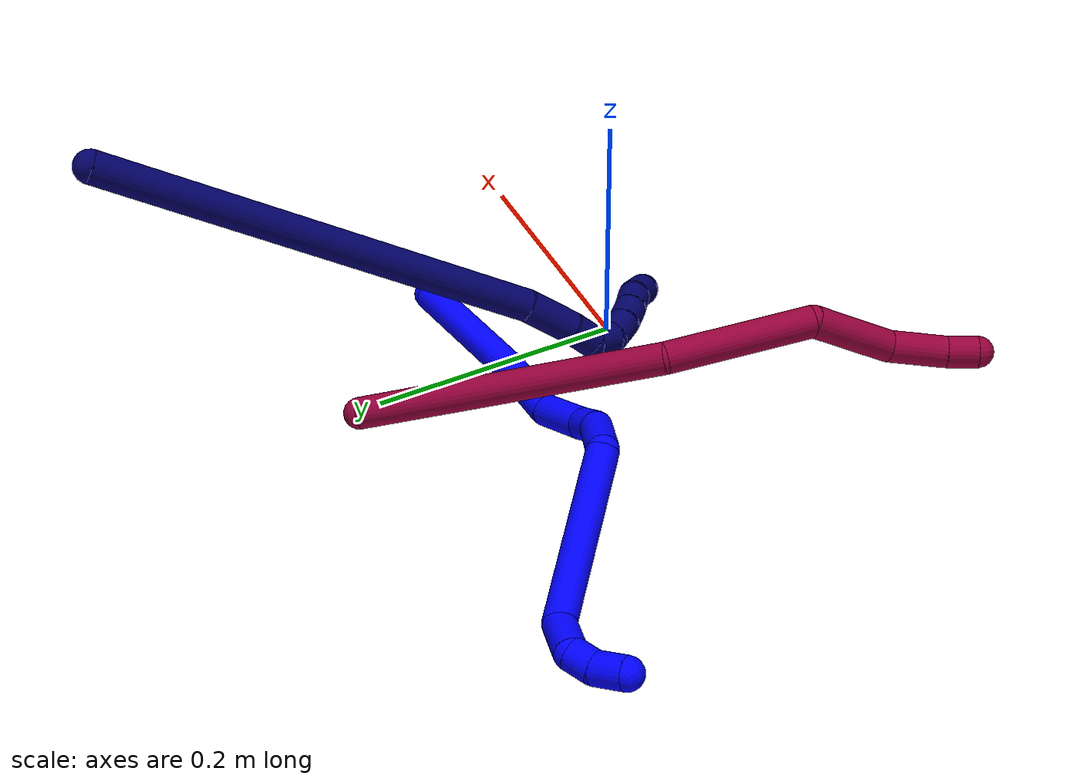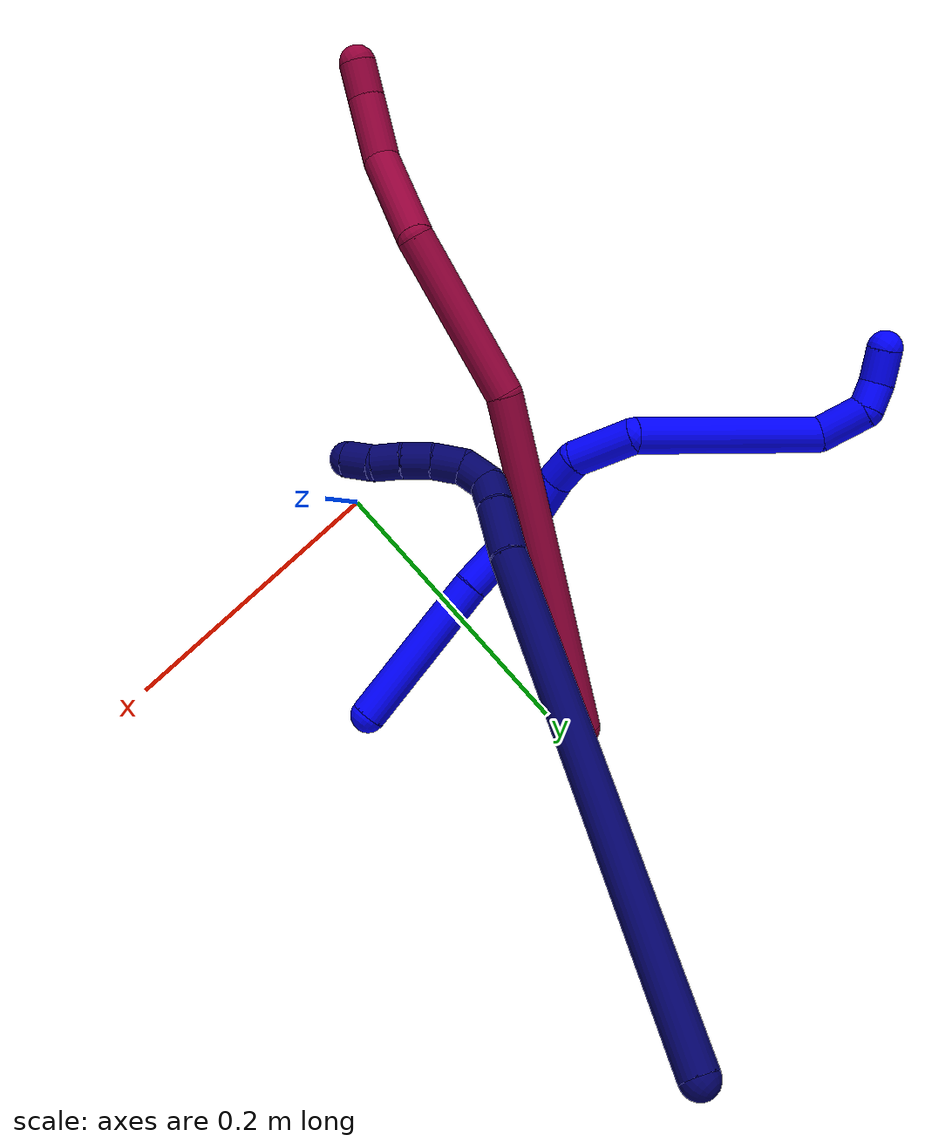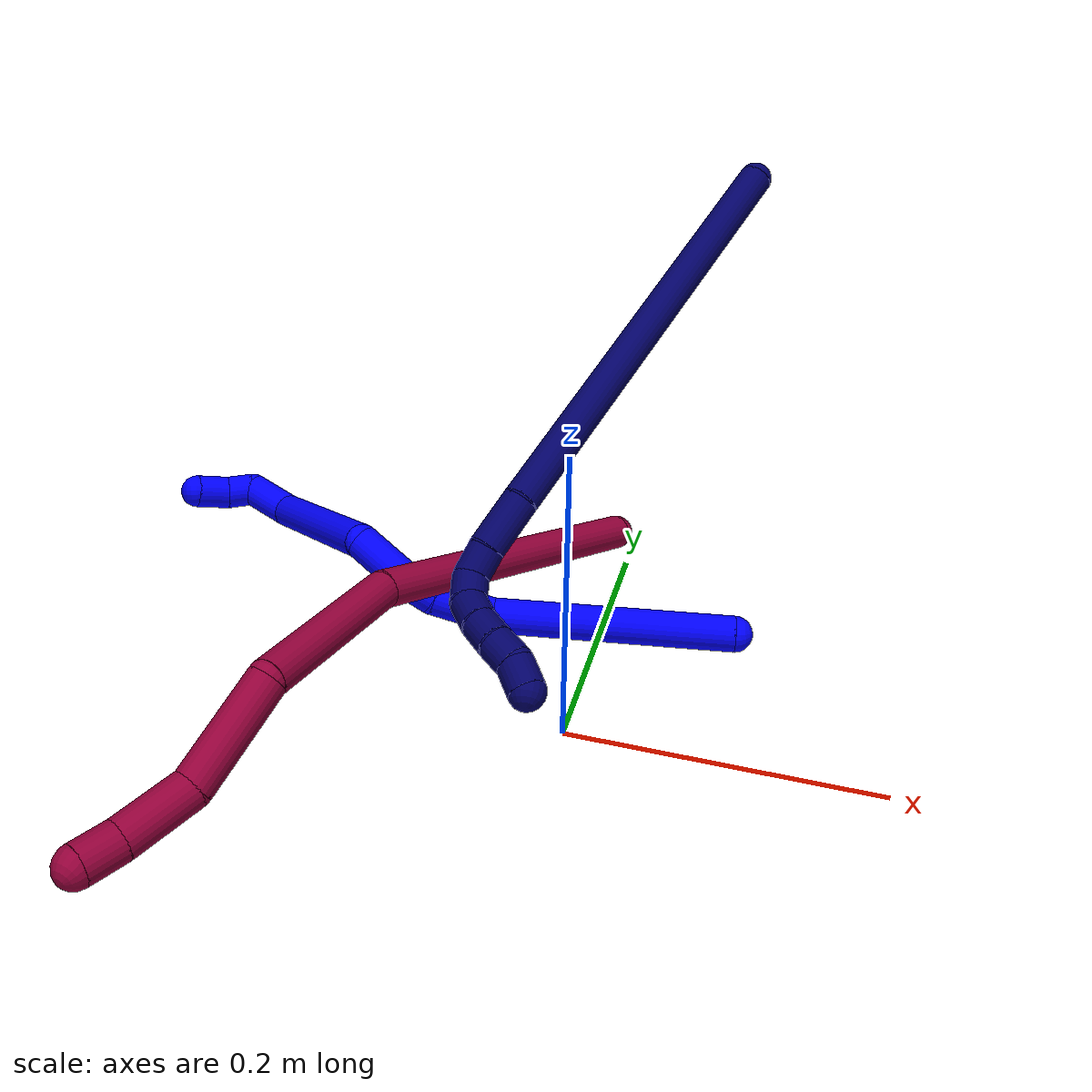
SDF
<sdf version="1.7">
 <world name="default">
  <model name="photoneo_s_sensor">
   <static>1</static>
   <pose>0 0 2 1.57079 1.57079 3.14159</pose>
   <link name="link">
    <inertial><mass>0.1</mass></inertial>
    <sensor name="sensor" type="depth">
     <update_rate>30</update_rate>
     <camera>
      <horizontal_fov>1.22</horizontal_fov>
      <image><width>1920</width><height>1200</height><format>B8G8R8</format></image>
      <clip><near>0.1</near><far>4</far></clip>
      <depth_camera><output>points</output></depth_camera>
     </camera>
     <plugin name="camera_plugin" filename="libgazebo_ros_depth_camera.so">
      <baseline>0.2</baseline>
      <alwaysOn>1</alwaysOn>
      <updateRate>0.0</updateRate>
      <cameraName>camera_ir</cameraName>
      <imageTopicName>/camera/color/image_raw</imageTopicName>
      <cameraInfoTopicName>/camera/color/camera_info</cameraInfoTopicName>
      <depthImageTopicName>/camera/depth/image_raw</depthImageTopicName>
      <depthImageCameraInfoTopicName>/camera/depth/camera_info</depthImageCameraInfoTopicName>
      <pointCloudTopicName>/camera/depth/points</pointCloudTopicName>
      <frameName>fr_optical</frameName>
      <pointCloudCutoff>0.1</pointCloudCutoff>
      <pointCloudCutoffMax>2.0</pointCloudCutoffMax>
      <distortionK1>0</distortionK1>
      <distortionK2>0</distortionK2>
      <distortionK3>0</distortionK3>
      <distortionT1>0</distortionT1>
      <distortionT2>0</distortionT2>
      <CxPrime>0</CxPrime>
      <Cx>0</Cx>
      <Cy>0</Cy>
      <focalLength>0</focalLength>
      <hackBaseline>0</hackBaseline>
     </plugin>
    </sensor>
   </link>
  </model>
  <model name="bin">
   <static>1</static>
   <link name="bottom">
    <collision name="collision-bottom">
     <pose>0 0 -0.01 0 -0 0</pose>
     <geometry><box><size>0.8 0.6 0.02</size></box></geometry>
     <surface>
      <friction><ode><mu>100</mu><mu2>100</mu2></ode></friction>
      <contact><collide_bitmask>65535</collide_bitmask></contact>
     </surface>
    </collision>
   </link>
   <link name="west_wall">
    <collision name="collision-west_wall">
     <pose>-0.41 0 0.1 0 -0 0</pose>
     <geometry><box><size>0.02 0.6 0.2</size></box></geometry>
     <surface>
      <friction><ode><mu>100</mu><mu2>100</mu2></ode></friction>
      <contact><collide_bitmask>65535</collide_bitmask></contact>
     </surface>
    </collision>
   </link>
   <link name="east_wall">
    <collision name="collision-east_wall">
     <pose>0.41 0 0.1 0 -0 0</pose>
     <geometry><box><size>0.02 0.6 0.2</size></box></geometry>
     <surface>
      <friction><ode><mu>100</mu><mu2>100</mu2></ode></friction>
      <contact><collide_bitmask>65535</collide_bitmask></contact>
     </surface>
    </collision>
   </link>
   <link name="south_wall">
    <collision name="collision-south_wall">
     <pose>0 -0.31 0.1 0 -0 0</pose>
     <geometry><box><size>0.8 0.02 0.2</size></box></geometry>
     <surface>
      <friction><ode><mu>100</mu><mu2>100</mu2></ode></friction>
      <contact><collide_bitmask>65535</collide_bitmask></contact>
     </surface>
    </collision>
   </link>
   <link name="north_wall">
    <collision name="collision-north_wall">
     <pose>0 0.31 0.1 0 -0 0</pose>
     <geometry><box><size>0.8 0.02 0.2</size></box></geometry>
     <surface>
      <friction><ode><mu>100</mu><mu2>100</mu2></ode></friction>
      <contact><collide_bitmask>65535</collide_bitmask></contact>
     </surface>
    </collision>
   </link>
  </model>
  <model name="1">
   <static>0</static>
   <link name="1">
    <collision name="collision-cylinder-e_1_1_4">
     <pose>0.001101 0.006374 0.057311 -0.110755 0.01909 -0.001058</pose>
     <geometry><cylinder><radius>0.0125</radius><length>0.115349</length></cylinder></geometry>
     <surface>
      <friction><ode><mu>1.16</mu><mu2>1.16</mu2><slip1>0</slip1><slip2>0</slip2></ode></friction>
      <contact><ode><kp>1e+06</kp><kd>1</kd><max_vel>0</max_vel><min_depth>0.001</min_depth></ode></contact>
     </surface>
    </collision>
    <visual name="visual-cylinder-e_1_1_4">
     <pose>0.001101 0.006374 0.057311 -0.110755 0.01909 -0.001058</pose>
     <geometry><cylinder><radius>0.0125</radius><length>0.115349</length></cylinder></geometry>
     <material><ambient>0 0 1 1</ambient></material>
    </visual>
    <collision name="collision-cylinder-e_2_4_5">
     <pose>0.00024 0.014702 0.141116 -0.073665 -0.073704 0.002717</pose>
     <geometry><cylinder><radius>0.0125</radius><length>0.053278</length></cylinder></geometry>
     <surface>
      <friction><ode><mu>1.16</mu><mu2>1.16</mu2><slip1>0</slip1><slip2>0</slip2></ode></friction>
      <contact><ode><kp>1e+06</kp><kd>1</kd><max_vel>0</max_vel><min_depth>0.001</min_depth></ode></contact>
     </surface>
    </collision>
    <visual name="visual-cylinder-e_2_4_5">
     <pose>0.00024 0.014702 0.141116 -0.073665 -0.073704 0.002717</pose>
     <geometry><cylinder><radius>0.0125</radius><length>0.053278</length></cylinder></geometry>
     <material><ambient>0 0 1 1</ambient></material>
    </visual>
    <collision name="collision-cylinder-e_3_5_6">
     <pose>0.002328 0.025517 0.18754 -0.418316 0.183559 -0.039068</pose>
     <geometry><cylinder><radius>0.0125</radius><length>0.044364</length></cylinder></geometry>
     <surface>
      <friction><ode><mu>1.16</mu><mu2>1.16</mu2><slip1>0</slip1><slip2>0</slip2></ode></friction>
      <contact><ode><kp>1e+06</kp><kd>1</kd><max_vel>0</max_vel><min_depth>0.001</min_depth></ode></contact>
     </surface>
    </collision>
    <visual name="visual-cylinder-e_3_5_6">
     <pose>0.002328 0.025517 0.18754 -0.418316 0.183559 -0.039068</pose>
     <geometry><cylinder><radius>0.0125</radius><length>0.044364</length></cylinder></geometry>
     <material><ambient>0 0 1 1</ambient></material>
    </visual>
    <collision name="collision-cylinder-e_4_6_7">
     <pose>0.007393 0.040935 0.216018 -0.654398 0.094072 -0.031949</pose>
     <geometry><cylinder><radius>0.0125</radius><length>0.021646</length></cylinder></geometry>
     <surface>
      <friction><ode><mu>1.16</mu><mu2>1.16</mu2><slip1>0</slip1><slip2>0</slip2></ode></friction>
      <contact><ode><kp>1e+06</kp><kd>1</kd><max_vel>0</max_vel><min_depth>0.001</min_depth></ode></contact>
     </surface>
    </collision>
    <visual name="visual-cylinder-e_4_6_7">
     <pose>0.007393 0.040935 0.216018 -0.654398 0.094072 -0.031949</pose>
     <geometry><cylinder><radius>0.0125</radius><length>0.021646</length></cylinder></geometry>
     <material><ambient>0 0 1 1</ambient></material>
    </visual>
    <collision name="collision-cylinder-e_5_7_8">
     <pose>0.000298 0.059845 0.241594 -0.627565 -0.368036 0.120649</pose>
     <geometry><cylinder><radius>0.0125</radius><length>0.04509</length></cylinder></geometry>
     <surface>
      <friction><ode><mu>1.16</mu><mu2>1.16</mu2><slip1>0</slip1><slip2>0</slip2></ode></friction>
      <contact><ode><kp>1e+06</kp><kd>1</kd><max_vel>0</max_vel><min_depth>0.001</min_depth></ode></contact>
     </surface>
    </collision>
    <visual name="visual-cylinder-e_5_7_8">
     <pose>0.000298 0.059845 0.241594 -0.627565 -0.368036 0.120649</pose>
     <geometry><cylinder><radius>0.0125</radius><length>0.04509</length></cylinder></geometry>
     <material><ambient>0 0 1 1</ambient></material>
    </visual>
    <collision name="collision-cylinder-e_6_8_9">
     <pose>-0.061765 0.068224 0.302342 0.090633 -0.887763 -0.043122</pose>
     <geometry><cylinder><radius>0.0125</radius><length>0.139113</length></cylinder></geometry>
     <surface>
      <friction><ode><mu>1.16</mu><mu2>1.16</mu2><slip1>0</slip1><slip2>0</slip2></ode></friction>
      <contact><ode><kp>1e+06</kp><kd>1</kd><max_vel>0</max_vel><min_depth>0.001</min_depth></ode></contact>
     </surface>
    </collision>
    <visual name="visual-cylinder-e_6_8_9">
     <pose>-0.061765 0.068224 0.302342 0.090633 -0.887763 -0.043122</pose>
     <geometry><cylinder><radius>0.0125</radius><length>0.139113</length></cylinder></geometry>
     <material><ambient>0 0 1 1</ambient></material>
    </visual>
    <collision name="collision-cylinder-e_7_9_10">
     <pose>-0.121027 0.072101 0.36146 -0.471505 -0.298071 0.072106</pose>
     <geometry><cylinder><radius>0.0125</radius><length>0.036162</length></cylinder></geometry>
     <surface>
      <friction><ode><mu>1.16</mu><mu2>1.16</mu2><slip1>0</slip1><slip2>0</slip2></ode></friction>
      <contact><ode><kp>1e+06</kp><kd>1</kd><max_vel>0</max_vel><min_depth>0.001</min_depth></ode></contact>
     </surface>
    </collision>
    <visual name="visual-cylinder-e_7_9_10">
     <pose>-0.121027 0.072101 0.36146 -0.471505 -0.298071 0.072106</pose>
     <geometry><cylinder><radius>0.0125</radius><length>0.036162</length></cylinder></geometry>
     <material><ambient>0 0 1 1</ambient></material>
    </visual>
    <collision name="collision-cylinder-e_8_10_11">
     <pose>-0.123597 0.079716 0.386501 0.02448 0.276822 0.00341</pose>
     <geometry><cylinder><radius>0.0125</radius><length>0.020055</length></cylinder></geometry>
     <surface>
      <friction><ode><mu>1.16</mu><mu2>1.16</mu2><slip1>0</slip1><slip2>0</slip2></ode></friction>
      <contact><ode><kp>1e+06</kp><kd>1</kd><max_vel>0</max_vel><min_depth>0.001</min_depth></ode></contact>
     </surface>
    </collision>
    <visual name="visual-cylinder-e_8_10_11">
     <pose>-0.123597 0.079716 0.386501 0.02448 0.276822 0.00341</pose>
     <geometry><cylinder><radius>0.0125</radius><length>0.020055</length></cylinder></geometry>
     <material><ambient>0 0 1 1</ambient></material>
    </visual>
    <collision name="collision-cylinder-e_9_11_2">
     <pose>-0.11435 0.082339 0.406391 -0.272153 0.548881 -0.077061</pose>
     <geometry><cylinder><radius>0.0125</radius><length>0.024942</length></cylinder></geometry>
     <surface>
      <friction><ode><mu>1.16</mu><mu2>1.16</mu2><slip1>0</slip1><slip2>0</slip2></ode></friction>
      <contact><ode><kp>1e+06</kp><kd>1</kd><max_vel>0</max_vel><min_depth>0.001</min_depth></ode></contact>
     </surface>
    </collision>
    <visual name="visual-cylinder-e_9_11_2">
     <pose>-0.11435 0.082339 0.406391 -0.272153 0.548881 -0.077061</pose>
     <geometry><cylinder><radius>0.0125</radius><length>0.024942</length></cylinder></geometry>
     <material><ambient>0 0 1 1</ambient></material>
    </visual>
    <collision name="collision-sphere-2">
     <pose>-0.107843 0.085199 0.416639 0 -0 0</pose>
     <geometry><sphere><radius>0.0125</radius></sphere></geometry>
     <surface>
      <friction><ode><mu>1.16</mu><mu2>1.16</mu2><slip1>0</slip1><slip2>0</slip2></ode></friction>
      <contact><ode><kp>1e+06</kp><kd>1</kd><max_vel>0</max_vel><min_depth>0.001</min_depth></ode></contact>
     </surface>
    </collision>
    <visual name="visual-sphere-2">
     <pose>-0.107843 0.085199 0.416639 0 -0 0</pose>
     <geometry><sphere><radius>0.0125</radius></sphere></geometry>
     <material><ambient>0 0 1 1</ambient></material>
    </visual>
    <collision name="collision-sphere-11">
     <pose>-0.120856 0.079479 0.396143 0 -0 0</pose>
     <geometry><sphere><radius>0.0125</radius></sphere></geometry>
     <surface>
      <friction><ode><mu>1.16</mu><mu2>1.16</mu2><slip1>0</slip1><slip2>0</slip2></ode></friction>
      <contact><ode><kp>1e+06</kp><kd>1</kd><max_vel>0</max_vel><min_depth>0.001</min_depth></ode></contact>
     </surface>
    </collision>
    <visual name="visual-sphere-11">
     <pose>-0.120856 0.079479 0.396143 0 -0 0</pose>
     <geometry><sphere><radius>0.0125</radius></sphere></geometry>
     <material><ambient>0 0 1 1</ambient></material>
    </visual>
    <collision name="collision-sphere-10">
     <pose>-0.126337 0.079952 0.376858 0 -0 0</pose>
     <geometry><sphere><radius>0.0125</radius></sphere></geometry>
     <surface>
      <friction><ode><mu>1.16</mu><mu2>1.16</mu2><slip1>0</slip1><slip2>0</slip2></ode></friction>
      <contact><ode><kp>1e+06</kp><kd>1</kd><max_vel>0</max_vel><min_depth>0.001</min_depth></ode></contact>
     </surface>
    </collision>
    <visual name="visual-sphere-10">
     <pose>-0.126337 0.079952 0.376858 0 -0 0</pose>
     <geometry><sphere><radius>0.0125</radius></sphere></geometry>
     <material><ambient>0 0 1 1</ambient></material>
    </visual>
    <collision name="collision-sphere-9">
     <pose>-0.115717 0.06425 0.346062 0 -0 0</pose>
     <geometry><sphere><radius>0.0125</radius></sphere></geometry>
     <surface>
      <friction><ode><mu>1.16</mu><mu2>1.16</mu2><slip1>0</slip1><slip2>0</slip2></ode></friction>
      <contact><ode><kp>1e+06</kp><kd>1</kd><max_vel>0</max_vel><min_depth>0.001</min_depth></ode></contact>
     </surface>
    </collision>
    <visual name="visual-sphere-9">
     <pose>-0.115717 0.06425 0.346062 0 -0 0</pose>
     <geometry><sphere><radius>0.0125</radius></sphere></geometry>
     <material><ambient>0 0 1 1</ambient></material>
    </visual>
    <collision name="collision-sphere-4">
     <pose>0.002202 0.012747 0.114621 0 -0 0</pose>
     <geometry><sphere><radius>0.0125</radius></sphere></geometry>
     <surface>
      <friction><ode><mu>1.16</mu><mu2>1.16</mu2><slip1>0</slip1><slip2>0</slip2></ode></friction>
      <contact><ode><kp>1e+06</kp><kd>1</kd><max_vel>0</max_vel><min_depth>0.001</min_depth></ode></contact>
     </surface>
    </collision>
    <visual name="visual-sphere-4">
     <pose>0.002202 0.012747 0.114621 0 -0 0</pose>
     <geometry><sphere><radius>0.0125</radius></sphere></geometry>
     <material><ambient>0 0 1 1</ambient></material>
    </visual>
    <collision name="collision-sphere-1">
     <geometry><sphere><radius>0.0125</radius></sphere></geometry>
     <surface>
      <friction><ode><mu>1.16</mu><mu2>1.16</mu2><slip1>0</slip1><slip2>0</slip2></ode></friction>
      <contact><ode><kp>1e+06</kp><kd>1</kd><max_vel>0</max_vel><min_depth>0.001</min_depth></ode></contact>
     </surface>
    </collision>
    <visual name="visual-sphere-1">
     <geometry><sphere><radius>0.0125</radius></sphere></geometry>
     <material><ambient>0 0 1 1</ambient></material>
    </visual>
    <collision name="collision-sphere-8">
     <pose>-0.007813 0.072197 0.258622 0 -0 0</pose>
     <geometry><sphere><radius>0.0125</radius></sphere></geometry>
     <surface>
      <friction><ode><mu>1.16</mu><mu2>1.16</mu2><slip1>0</slip1><slip2>0</slip2></ode></friction>
      <contact><ode><kp>1e+06</kp><kd>1</kd><max_vel>0</max_vel><min_depth>0.001</min_depth></ode></contact>
     </surface>
    </collision>
    <visual name="visual-sphere-8">
     <pose>-0.007813 0.072197 0.258622 0 -0 0</pose>
     <geometry><sphere><radius>0.0125</radius></sphere></geometry>
     <material><ambient>0 0 1 1</ambient></material>
    </visual>
    <collision name="collision-sphere-5">
     <pose>-0.001721 0.016658 0.167611 0 -0 0</pose>
     <geometry><sphere><radius>0.0125</radius></sphere></geometry>
     <surface>
      <friction><ode><mu>1.16</mu><mu2>1.16</mu2><slip1>0</slip1><slip2>0</slip2></ode></friction>
      <contact><ode><kp>1e+06</kp><kd>1</kd><max_vel>0</max_vel><min_depth>0.001</min_depth></ode></contact>
     </surface>
    </collision>
    <visual name="visual-sphere-5">
     <pose>-0.001721 0.016658 0.167611 0 -0 0</pose>
     <geometry><sphere><radius>0.0125</radius></sphere></geometry>
     <material><ambient>0 0 1 1</ambient></material>
    </visual>
    <collision name="collision-sphere-6">
     <pose>0.006376 0.034377 0.207469 0 -0 0</pose>
     <geometry><sphere><radius>0.0125</radius></sphere></geometry>
     <surface>
      <friction><ode><mu>1.16</mu><mu2>1.16</mu2><slip1>0</slip1><slip2>0</slip2></ode></friction>
      <contact><ode><kp>1e+06</kp><kd>1</kd><max_vel>0</max_vel><min_depth>0.001</min_depth></ode></contact>
     </surface>
    </collision>
    <visual name="visual-sphere-6">
     <pose>0.006376 0.034377 0.207469 0 -0 0</pose>
     <geometry><sphere><radius>0.0125</radius></sphere></geometry>
     <material><ambient>0 0 1 1</ambient></material>
    </visual>
    <collision name="collision-sphere-7">
     <pose>0.00841 0.047494 0.224567 0 -0 0</pose>
     <geometry><sphere><radius>0.0125</radius></sphere></geometry>
     <surface>
      <friction><ode><mu>1.16</mu><mu2>1.16</mu2><slip1>0</slip1><slip2>0</slip2></ode></friction>
      <contact><ode><kp>1e+06</kp><kd>1</kd><max_vel>0</max_vel><min_depth>0.001</min_depth></ode></contact>
     </surface>
    </collision>
    <visual name="visual-sphere-7">
     <pose>0.00841 0.047494 0.224567 0 -0 0</pose>
     <geometry><sphere><radius>0.0125</radius></sphere></geometry>
     <material><ambient>0 0 1 1</ambient></material>
    </visual>
    <inertial>
     <pose>-0.035767 0.043971 0.222074 0 -0 0</pose>
     <mass>0.5</mass>
     <inertia>
      <ixx>0.000306</ixx>
      <ixy>0</ixy>
      <ixz>0</ixz>
      <iyy>0.000403</iyy>
      <iyz>0</iyz>
      <izz>0.000196</izz>
     </inertia>
    </inertial>
   </link>
   <pose>0.092059 0.116845 0.012498 1.67343 -0.244819 -1.41464</pose>
  </model>
  <model name="7">
   <static>0</static>
   <link name="7">
    <collision name="collision-cylinder-e_1_1_4">
     <pose>-0.013627 -0.070424 -0.151932 2.70755 -0.081194 -0.364354</pose>
     <geometry><cylinder><radius>0.0125</radius><length>0.336027</length></cylinder></geometry>
     <surface>
      <friction><ode><mu>1.16</mu><mu2>1.16</mu2><slip1>0</slip1><slip2>0</slip2></ode></friction>
      <contact><ode><kp>1e+06</kp><kd>1</kd><max_vel>0</max_vel><min_depth>0.001</min_depth></ode></contact>
     </surface>
    </collision>
    <visual name="visual-cylinder-e_1_1_4">
     <pose>-0.013627 -0.070424 -0.151932 2.70755 -0.081194 -0.364354</pose>
     <geometry><cylinder><radius>0.0125</radius><length>0.336027</length></cylinder></geometry>
     <material><ambient>0.003922 0 0.403922 1</ambient></material>
    </visual>
    <collision name="collision-cylinder-e_2_4_5">
     <pose>-0.031823 -0.149431 -0.321223 2.68239 -0.23172 -0.924011</pose>
     <geometry><cylinder><radius>0.0125</radius><length>0.039795</length></cylinder></geometry>
     <surface>
      <friction><ode><mu>1.16</mu><mu2>1.16</mu2><slip1>0</slip1><slip2>0</slip2></ode></friction>
      <contact><ode><kp>1e+06</kp><kd>1</kd><max_vel>0</max_vel><min_depth>0.001</min_depth></ode></contact>
     </surface>
    </collision>
    <visual name="visual-cylinder-e_2_4_5">
     <pose>-0.031823 -0.149431 -0.321223 2.68239 -0.23172 -0.924011</pose>
     <geometry><cylinder><radius>0.0125</radius><length>0.039795</length></cylinder></geometry>
     <material><ambient>0.003922 0 0.403922 1</ambient></material>
    </visual>
    <collision name="collision-cylinder-e_3_5_6">
     <pose>-0.040112 -0.161827 -0.348252 2.76598 -0.343657 -1.48007</pose>
     <geometry><cylinder><radius>0.0125</radius><length>0.022079</length></cylinder></geometry>
     <surface>
      <friction><ode><mu>1.16</mu><mu2>1.16</mu2><slip1>0</slip1><slip2>0</slip2></ode></friction>
      <contact><ode><kp>1e+06</kp><kd>1</kd><max_vel>0</max_vel><min_depth>0.001</min_depth></ode></contact>
     </surface>
    </collision>
    <visual name="visual-cylinder-e_3_5_6">
     <pose>-0.040112 -0.161827 -0.348252 2.76598 -0.343657 -1.48007</pose>
     <geometry><cylinder><radius>0.0125</radius><length>0.022079</length></cylinder></geometry>
     <material><ambient>0.003922 0 0.403922 1</ambient></material>
    </visual>
    <collision name="collision-cylinder-e_4_6_7">
     <pose>-0.041896 -0.164735 -0.368016 -3.05223 0.188675 -2.25872</pose>
     <geometry><cylinder><radius>0.0125</radius><length>0.020638</length></cylinder></geometry>
     <surface>
      <friction><ode><mu>1.16</mu><mu2>1.16</mu2><slip1>0</slip1><slip2>0</slip2></ode></friction>
      <contact><ode><kp>1e+06</kp><kd>1</kd><max_vel>0</max_vel><min_depth>0.001</min_depth></ode></contact>
     </surface>
    </collision>
    <visual name="visual-cylinder-e_4_6_7">
     <pose>-0.041896 -0.164735 -0.368016 -3.05223 0.188675 -2.25872</pose>
     <geometry><cylinder><radius>0.0125</radius><length>0.020638</length></cylinder></geometry>
     <material><ambient>0.003922 0 0.403922 1</ambient></material>
    </visual>
    <collision name="collision-cylinder-e_5_7_8">
     <pose>-0.035903 -0.158862 -0.386603 -2.6122 0.391167 -1.26234</pose>
     <geometry><cylinder><radius>0.0125</radius><length>0.021285</length></cylinder></geometry>
     <surface>
      <friction><ode><mu>1.16</mu><mu2>1.16</mu2><slip1>0</slip1><slip2>0</slip2></ode></friction>
      <contact><ode><kp>1e+06</kp><kd>1</kd><max_vel>0</max_vel><min_depth>0.001</min_depth></ode></contact>
     </surface>
    </collision>
    <visual name="visual-cylinder-e_5_7_8">
     <pose>-0.035903 -0.158862 -0.386603 -2.6122 0.391167 -1.26234</pose>
     <geometry><cylinder><radius>0.0125</radius><length>0.021285</length></cylinder></geometry>
     <material><ambient>0.003922 0 0.403922 1</ambient></material>
    </visual>
    <collision name="collision-cylinder-e_6_8_9">
     <pose>-0.028412 -0.147778 -0.40232 -2.43911 0.347926 -0.89437</pose>
     <geometry><cylinder><radius>0.0125</radius><length>0.020138</length></cylinder></geometry>
     <surface>
      <friction><ode><mu>1.16</mu><mu2>1.16</mu2><slip1>0</slip1><slip2>0</slip2></ode></friction>
      <contact><ode><kp>1e+06</kp><kd>1</kd><max_vel>0</max_vel><min_depth>0.001</min_depth></ode></contact>
     </surface>
    </collision>
    <visual name="visual-cylinder-e_6_8_9">
     <pose>-0.028412 -0.147778 -0.40232 -2.43911 0.347926 -0.89437</pose>
     <geometry><cylinder><radius>0.0125</radius><length>0.020138</length></cylinder></geometry>
     <material><ambient>0.003922 0 0.403922 1</ambient></material>
    </visual>
    <collision name="collision-cylinder-e_7_9_10">
     <pose>-0.022565 -0.1348 -0.416411 -2.35658 0.243721 -0.575238</pose>
     <geometry><cylinder><radius>0.0125</radius><length>0.020006</length></cylinder></geometry>
     <surface>
      <friction><ode><mu>1.16</mu><mu2>1.16</mu2><slip1>0</slip1><slip2>0</slip2></ode></friction>
      <contact><ode><kp>1e+06</kp><kd>1</kd><max_vel>0</max_vel><min_depth>0.001</min_depth></ode></contact>
     </surface>
    </collision>
    <visual name="visual-cylinder-e_7_9_10">
     <pose>-0.022565 -0.1348 -0.416411 -2.35658 0.243721 -0.575238</pose>
     <geometry><cylinder><radius>0.0125</radius><length>0.020006</length></cylinder></geometry>
     <material><ambient>0.003922 0 0.403922 1</ambient></material>
    </visual>
    <collision name="collision-cylinder-e_8_10_2">
     <pose>-0.019472 -0.123072 -0.432006 -2.63292 0.06787 -0.259705</pose>
     <geometry><cylinder><radius>0.0125</radius><length>0.020033</length></cylinder></geometry>
     <surface>
      <friction><ode><mu>1.16</mu><mu2>1.16</mu2><slip1>0</slip1><slip2>0</slip2></ode></friction>
      <contact><ode><kp>1e+06</kp><kd>1</kd><max_vel>0</max_vel><min_depth>0.001</min_depth></ode></contact>
     </surface>
    </collision>
    <visual name="visual-cylinder-e_8_10_2">
     <pose>-0.019472 -0.123072 -0.432006 -2.63292 0.06787 -0.259705</pose>
     <geometry><cylinder><radius>0.0125</radius><length>0.020033</length></cylinder></geometry>
     <material><ambient>0.003922 0 0.403922 1</ambient></material>
    </visual>
    <collision name="collision-sphere-2">
     <pose>-0.018793 -0.118205 -0.440735 0 -0 0</pose>
     <geometry><sphere><radius>0.0125</radius></sphere></geometry>
     <surface>
      <friction><ode><mu>1.16</mu><mu2>1.16</mu2><slip1>0</slip1><slip2>0</slip2></ode></friction>
      <contact><ode><kp>1e+06</kp><kd>1</kd><max_vel>0</max_vel><min_depth>0.001</min_depth></ode></contact>
     </surface>
    </collision>
    <visual name="visual-sphere-2">
     <pose>-0.018793 -0.118205 -0.440735 0 -0 0</pose>
     <geometry><sphere><radius>0.0125</radius></sphere></geometry>
     <material><ambient>0.003922 0 0.403922 1</ambient></material>
    </visual>
    <collision name="collision-sphere-10">
     <pose>-0.020151 -0.127939 -0.423278 0 -0 0</pose>
     <geometry><sphere><radius>0.0125</radius></sphere></geometry>
     <surface>
      <friction><ode><mu>1.16</mu><mu2>1.16</mu2><slip1>0</slip1><slip2>0</slip2></ode></friction>
      <contact><ode><kp>1e+06</kp><kd>1</kd><max_vel>0</max_vel><min_depth>0.001</min_depth></ode></contact>
     </surface>
    </collision>
    <visual name="visual-sphere-10">
     <pose>-0.020151 -0.127939 -0.423278 0 -0 0</pose>
     <geometry><sphere><radius>0.0125</radius></sphere></geometry>
     <material><ambient>0.003922 0 0.403922 1</ambient></material>
    </visual>
    <collision name="collision-sphere-9">
     <pose>-0.024979 -0.141662 -0.409544 0 -0 0</pose>
     <geometry><sphere><radius>0.0125</radius></sphere></geometry>
     <surface>
      <friction><ode><mu>1.16</mu><mu2>1.16</mu2><slip1>0</slip1><slip2>0</slip2></ode></friction>
      <contact><ode><kp>1e+06</kp><kd>1</kd><max_vel>0</max_vel><min_depth>0.001</min_depth></ode></contact>
     </surface>
    </collision>
    <visual name="visual-sphere-9">
     <pose>-0.024979 -0.141662 -0.409544 0 -0 0</pose>
     <geometry><sphere><radius>0.0125</radius></sphere></geometry>
     <material><ambient>0.003922 0 0.403922 1</ambient></material>
    </visual>
    <collision name="collision-sphere-4">
     <pose>-0.027253 -0.140847 -0.303864 0 -0 0</pose>
     <geometry><sphere><radius>0.0125</radius></sphere></geometry>
     <surface>
      <friction><ode><mu>1.16</mu><mu2>1.16</mu2><slip1>0</slip1><slip2>0</slip2></ode></friction>
      <contact><ode><kp>1e+06</kp><kd>1</kd><max_vel>0</max_vel><min_depth>0.001</min_depth></ode></contact>
     </surface>
    </collision>
    <visual name="visual-sphere-4">
     <pose>-0.027253 -0.140847 -0.303864 0 -0 0</pose>
     <geometry><sphere><radius>0.0125</radius></sphere></geometry>
     <material><ambient>0.003922 0 0.403922 1</ambient></material>
    </visual>
    <collision name="collision-sphere-1">
     <geometry><sphere><radius>0.0125</radius></sphere></geometry>
     <surface>
      <friction><ode><mu>1.16</mu><mu2>1.16</mu2><slip1>0</slip1><slip2>0</slip2></ode></friction>
      <contact><ode><kp>1e+06</kp><kd>1</kd><max_vel>0</max_vel><min_depth>0.001</min_depth></ode></contact>
     </surface>
    </collision>
    <visual name="visual-sphere-1">
     <geometry><sphere><radius>0.0125</radius></sphere></geometry>
     <material><ambient>0.003922 0 0.403922 1</ambient></material>
    </visual>
    <collision name="collision-sphere-8">
     <pose>-0.031845 -0.153894 -0.395095 0 -0 0</pose>
     <geometry><sphere><radius>0.0125</radius></sphere></geometry>
     <surface>
      <friction><ode><mu>1.16</mu><mu2>1.16</mu2><slip1>0</slip1><slip2>0</slip2></ode></friction>
      <contact><ode><kp>1e+06</kp><kd>1</kd><max_vel>0</max_vel><min_depth>0.001</min_depth></ode></contact>
     </surface>
    </collision>
    <visual name="visual-sphere-8">
     <pose>-0.031845 -0.153894 -0.395095 0 -0 0</pose>
     <geometry><sphere><radius>0.0125</radius></sphere></geometry>
     <material><ambient>0.003922 0 0.403922 1</ambient></material>
    </visual>
    <collision name="collision-sphere-5">
     <pose>-0.036392 -0.158014 -0.338583 0 -0 0</pose>
     <geometry><sphere><radius>0.0125</radius></sphere></geometry>
     <surface>
      <friction><ode><mu>1.16</mu><mu2>1.16</mu2><slip1>0</slip1><slip2>0</slip2></ode></friction>
      <contact><ode><kp>1e+06</kp><kd>1</kd><max_vel>0</max_vel><min_depth>0.001</min_depth></ode></contact>
     </surface>
    </collision>
    <visual name="visual-sphere-5">
     <pose>-0.036392 -0.158014 -0.338583 0 -0 0</pose>
     <geometry><sphere><radius>0.0125</radius></sphere></geometry>
     <material><ambient>0.003922 0 0.403922 1</ambient></material>
    </visual>
    <collision name="collision-sphere-6">
     <pose>-0.043831 -0.16564 -0.357921 0 -0 0</pose>
     <geometry><sphere><radius>0.0125</radius></sphere></geometry>
     <surface>
      <friction><ode><mu>1.16</mu><mu2>1.16</mu2><slip1>0</slip1><slip2>0</slip2></ode></friction>
      <contact><ode><kp>1e+06</kp><kd>1</kd><max_vel>0</max_vel><min_depth>0.001</min_depth></ode></contact>
     </surface>
    </collision>
    <visual name="visual-sphere-6">
     <pose>-0.043831 -0.16564 -0.357921 0 -0 0</pose>
     <geometry><sphere><radius>0.0125</radius></sphere></geometry>
     <material><ambient>0.003922 0 0.403922 1</ambient></material>
    </visual>
    <collision name="collision-sphere-7">
     <pose>-0.03996 -0.163831 -0.378112 0 -0 0</pose>
     <geometry><sphere><radius>0.0125</radius></sphere></geometry>
     <surface>
      <friction><ode><mu>1.16</mu><mu2>1.16</mu2><slip1>0</slip1><slip2>0</slip2></ode></friction>
      <contact><ode><kp>1e+06</kp><kd>1</kd><max_vel>0</max_vel><min_depth>0.001</min_depth></ode></contact>
     </surface>
    </collision>
    <visual name="visual-sphere-7">
     <pose>-0.03996 -0.163831 -0.378112 0 -0 0</pose>
     <geometry><sphere><radius>0.0125</radius></sphere></geometry>
     <material><ambient>0.003922 0 0.403922 1</ambient></material>
    </visual>
    <inertial>
     <pose>-0.019547 -0.096206 -0.224872 0 -0 0</pose>
     <mass>0.5</mass>
     <inertia>
      <ixx>0.001823</ixx>
      <ixy>0</ixy>
      <ixz>0</ixz>
      <iyy>-0.003806</iyy>
      <iyz>0</iyz>
      <izz>0.001554</izz>
     </inertia>
    </inertial>
   </link>
   <pose>0.05412 0.378015 0.254935 -0.230889 -1.07647 -1.18926</pose>
  </model>
  <model name="8">
   <static>0</static>
   <link name="8">
    <collision name="collision-cylinder-e_1_1_4">
     <pose>0.009026 -0.056975 0.106752 0.490255 0.07445 0.018632</pose>
     <geometry><cylinder><radius>0.0125</radius><length>0.242682</length></cylinder></geometry>
     <surface>
      <friction><ode><mu>1.16</mu><mu2>1.16</mu2><slip1>0</slip1><slip2>0</slip2></ode></friction>
      <contact><ode><kp>1e+06</kp><kd>1</kd><max_vel>0</max_vel><min_depth>0.001</min_depth></ode></contact>
     </surface>
    </collision>
    <visual name="visual-cylinder-e_1_1_4">
     <pose>0.009026 -0.056975 0.106752 0.490255 0.07445 0.018632</pose>
     <geometry><cylinder><radius>0.0125</radius><length>0.242682</length></cylinder></geometry>
     <material><ambient>0.584314 0 0.227451 1</ambient></material>
    </visual>
    <collision name="collision-cylinder-e_2_4_5">
     <pose>0.013649 -0.125576 0.270819 0.200115 -0.075131 -0.007546</pose>
     <geometry><cylinder><radius>0.0125</radius><length>0.117295</length></cylinder></geometry>
     <surface>
      <friction><ode><mu>1.16</mu><mu2>1.16</mu2><slip1>0</slip1><slip2>0</slip2></ode></friction>
      <contact><ode><kp>1e+06</kp><kd>1</kd><max_vel>0</max_vel><min_depth>0.001</min_depth></ode></contact>
     </surface>
    </collision>
    <visual name="visual-cylinder-e_2_4_5">
     <pose>0.013649 -0.125576 0.270819 0.200115 -0.075131 -0.007546</pose>
     <geometry><cylinder><radius>0.0125</radius><length>0.117295</length></cylinder></geometry>
     <material><ambient>0.584314 0 0.227451 1</ambient></material>
    </visual>
    <collision name="collision-cylinder-e_3_5_6">
     <pose>0.019898 -0.12862 0.36055 -0.258772 0.307562 -0.040331</pose>
     <geometry><cylinder><radius>0.0125</radius><length>0.070367</length></cylinder></geometry>
     <surface>
      <friction><ode><mu>1.16</mu><mu2>1.16</mu2><slip1>0</slip1><slip2>0</slip2></ode></friction>
      <contact><ode><kp>1e+06</kp><kd>1</kd><max_vel>0</max_vel><min_depth>0.001</min_depth></ode></contact>
     </surface>
    </collision>
    <visual name="visual-cylinder-e_3_5_6">
     <pose>0.019898 -0.12862 0.36055 -0.258772 0.307562 -0.040331</pose>
     <geometry><cylinder><radius>0.0125</radius><length>0.070367</length></cylinder></geometry>
     <material><ambient>0.584314 0 0.227451 1</ambient></material>
    </visual>
    <collision name="collision-cylinder-e_4_6_7">
     <pose>0.036487 -0.123367 0.414512 0.15323 0.265907 0.020533</pose>
     <geometry><cylinder><radius>0.0125</radius><length>0.045192</length></cylinder></geometry>
     <surface>
      <friction><ode><mu>1.16</mu><mu2>1.16</mu2><slip1>0</slip1><slip2>0</slip2></ode></friction>
      <contact><ode><kp>1e+06</kp><kd>1</kd><max_vel>0</max_vel><min_depth>0.001</min_depth></ode></contact>
     </surface>
    </collision>
    <visual name="visual-cylinder-e_4_6_7">
     <pose>0.036487 -0.123367 0.414512 0.15323 0.265907 0.020533</pose>
     <geometry><cylinder><radius>0.0125</radius><length>0.045192</length></cylinder></geometry>
     <material><ambient>0.584314 0 0.227451 1</ambient></material>
    </visual>
    <collision name="collision-cylinder-e_5_7_2">
     <pose>0.044898 -0.129953 0.447587 0.275463 0.203535 0.028308</pose>
     <geometry><cylinder><radius>0.0125</radius><length>0.024464</length></cylinder></geometry>
     <surface>
      <friction><ode><mu>1.16</mu><mu2>1.16</mu2><slip1>0</slip1><slip2>0</slip2></ode></friction>
      <contact><ode><kp>1e+06</kp><kd>1</kd><max_vel>0</max_vel><min_depth>0.001</min_depth></ode></contact>
     </surface>
    </collision>
    <visual name="visual-cylinder-e_5_7_2">
     <pose>0.044898 -0.129953 0.447587 0.275463 0.203535 0.028308</pose>
     <geometry><cylinder><radius>0.0125</radius><length>0.024464</length></cylinder></geometry>
     <material><ambient>0.584314 0 0.227451 1</ambient></material>
    </visual>
    <collision name="collision-sphere-2">
     <pose>0.04737 -0.133212 0.459115 0 -0 0</pose>
     <geometry><sphere><radius>0.0125</radius></sphere></geometry>
     <surface>
      <friction><ode><mu>1.16</mu><mu2>1.16</mu2><slip1>0</slip1><slip2>0</slip2></ode></friction>
      <contact><ode><kp>1e+06</kp><kd>1</kd><max_vel>0</max_vel><min_depth>0.001</min_depth></ode></contact>
     </surface>
    </collision>
    <visual name="visual-sphere-2">
     <pose>0.04737 -0.133212 0.459115 0 -0 0</pose>
     <geometry><sphere><radius>0.0125</radius></sphere></geometry>
     <material><ambient>0.584314 0 0.227451 1</ambient></material>
    </visual>
    <collision name="collision-sphere-7">
     <pose>0.042425 -0.126695 0.436058 0 -0 0</pose>
     <geometry><sphere><radius>0.0125</radius></sphere></geometry>
     <surface>
      <friction><ode><mu>1.16</mu><mu2>1.16</mu2><slip1>0</slip1><slip2>0</slip2></ode></friction>
      <contact><ode><kp>1e+06</kp><kd>1</kd><max_vel>0</max_vel><min_depth>0.001</min_depth></ode></contact>
     </surface>
    </collision>
    <visual name="visual-sphere-7">
     <pose>0.042425 -0.126695 0.436058 0 -0 0</pose>
     <geometry><sphere><radius>0.0125</radius></sphere></geometry>
     <material><ambient>0.584314 0 0.227451 1</ambient></material>
    </visual>
    <collision name="collision-sphere-6">
     <pose>0.030549 -0.12004 0.392966 0 -0 0</pose>
     <geometry><sphere><radius>0.0125</radius></sphere></geometry>
     <surface>
      <friction><ode><mu>1.16</mu><mu2>1.16</mu2><slip1>0</slip1><slip2>0</slip2></ode></friction>
      <contact><ode><kp>1e+06</kp><kd>1</kd><max_vel>0</max_vel><min_depth>0.001</min_depth></ode></contact>
     </surface>
    </collision>
    <visual name="visual-sphere-6">
     <pose>0.030549 -0.12004 0.392966 0 -0 0</pose>
     <geometry><sphere><radius>0.0125</radius></sphere></geometry>
     <material><ambient>0.584314 0 0.227451 1</ambient></material>
    </visual>
    <collision name="collision-sphere-5">
     <pose>0.009247 -0.137201 0.328134 0 -0 0</pose>
     <geometry><sphere><radius>0.0125</radius></sphere></geometry>
     <surface>
      <friction><ode><mu>1.16</mu><mu2>1.16</mu2><slip1>0</slip1><slip2>0</slip2></ode></friction>
      <contact><ode><kp>1e+06</kp><kd>1</kd><max_vel>0</max_vel><min_depth>0.001</min_depth></ode></contact>
     </surface>
    </collision>
    <visual name="visual-sphere-5">
     <pose>0.009247 -0.137201 0.328134 0 -0 0</pose>
     <geometry><sphere><radius>0.0125</radius></sphere></geometry>
     <material><ambient>0.584314 0 0.227451 1</ambient></material>
    </visual>
    <collision name="collision-sphere-1">
     <geometry><sphere><radius>0.0125</radius></sphere></geometry>
     <surface>
      <friction><ode><mu>1.16</mu><mu2>1.16</mu2><slip1>0</slip1><slip2>0</slip2></ode></friction>
      <contact><ode><kp>1e+06</kp><kd>1</kd><max_vel>0</max_vel><min_depth>0.001</min_depth></ode></contact>
     </surface>
    </collision>
    <visual name="visual-sphere-1">
     <geometry><sphere><radius>0.0125</radius></sphere></geometry>
     <material><ambient>0.584314 0 0.227451 1</ambient></material>
    </visual>
    <collision name="collision-sphere-4">
     <pose>0.018051 -0.113951 0.213504 0 -0 0</pose>
     <geometry><sphere><radius>0.0125</radius></sphere></geometry>
     <surface>
      <friction><ode><mu>1.16</mu><mu2>1.16</mu2><slip1>0</slip1><slip2>0</slip2></ode></friction>
      <contact><ode><kp>1e+06</kp><kd>1</kd><max_vel>0</max_vel><min_depth>0.001</min_depth></ode></contact>
     </surface>
    </collision>
    <visual name="visual-sphere-4">
     <pose>0.018051 -0.113951 0.213504 0 -0 0</pose>
     <geometry><sphere><radius>0.0125</radius></sphere></geometry>
     <material><ambient>0.584314 0 0.227451 1</ambient></material>
    </visual>
    <inertial>
     <pose>0.015878 -0.092723 0.225452 0 -0 0</pose>
     <mass>0.5</mass>
     <inertia>
      <ixx>0.001401</ixx>
      <ixy>0</ixy>
      <ixz>0</ixz>
      <iyy>0.001248</iyy>
      <iyz>0</iyz>
      <izz>0.00053</izz>
     </inertia>
    </inertial>
   </link>
   <pose>-0.013594 0.222876 0.011874 -1.70527 0.535489 2.90124</pose>
  </model>
 </world>
</sdf>
